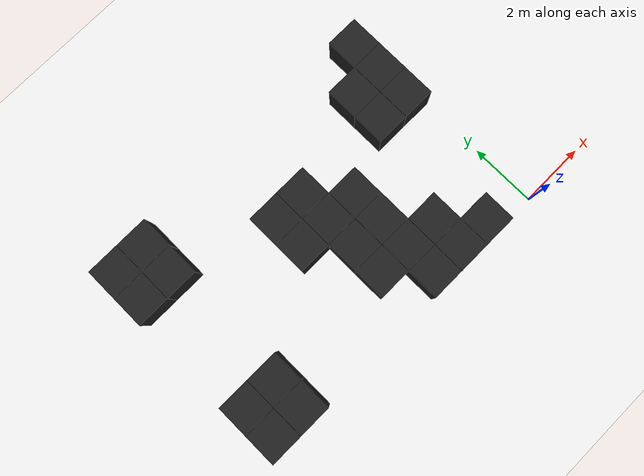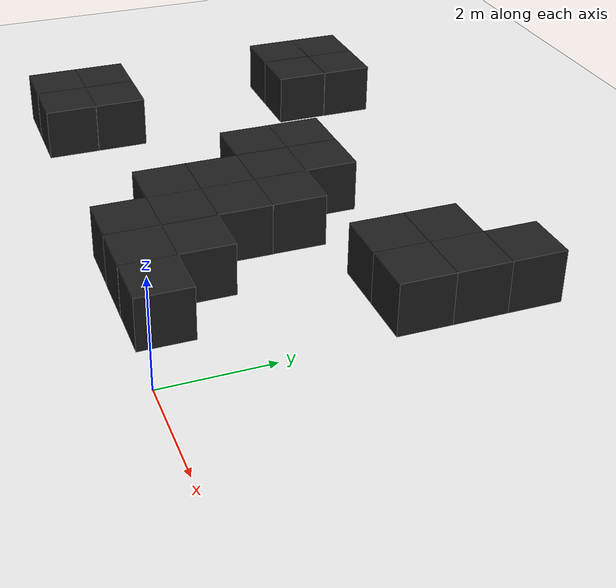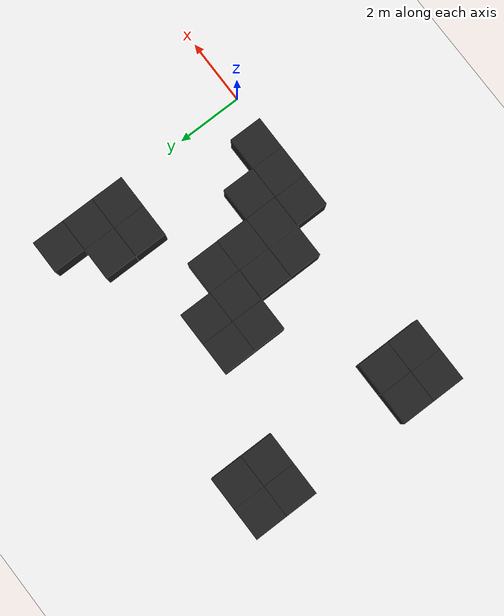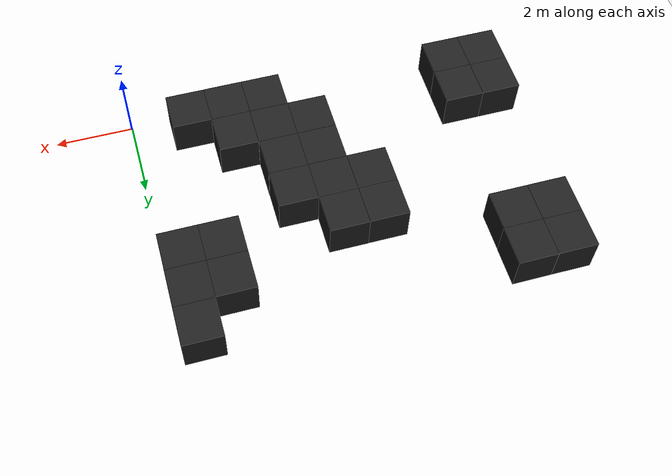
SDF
<sdf version="1.6">
 <world name="default">
  <light name="sun" type="directional">
   <pose>0 0 10 0 -0 0</pose>
   <diffuse>0.8 0.8 0.8 1</diffuse>
   <specular>0.1 0.1 0.1 1</specular>
   <attenuation>
    <range>1000</range>
    <constant>0.9</constant>
    <linear>0.01</linear>
    <quadratic>0.001</quadratic>
   </attenuation>
   <direction>-0.5 0.5 -1</direction>
  </light>
  <model name="ground_plane">
   <static>1</static>
   <link name="link">
    <collision name="collision">
     <geometry><plane><normal>0 0 1</normal><size>100 100</size></plane></geometry>
     <surface><friction><ode><mu>100</mu><mu2>50</mu2></ode></friction></surface>
    </collision>
    <visual name="visual">
     <cast_shadows>0</cast_shadows>
     <geometry><plane><normal>0 0 1</normal><size>100 100</size></plane></geometry>
     <material>
      <script><uri>file://media/materials/scripts/gazebo.material</uri><name>Gazebo/White</name></script>
     </material>
    </visual>
   </link>
  </model>
  <gravity>0 0 -9.8</gravity>
  <magnetic_field>6e-06 2.3e-05 -4.2e-05</magnetic_field>
  <atmosphere type="adiabatic"/>
  <physics name="default_physics" default="0" type="ode">
   <max_step_size>0.001</max_step_size>
   <real_time_factor>1</real_time_factor>
   <real_time_update_rate>1000</real_time_update_rate>
  </physics>
  <scene><ambient>0.4 0.4 0.4 1</ambient><background>0.7 0.7 0.7 1</background><shadows>1</shadows></scene>
  <spherical_coordinates>
   <surface_model>EARTH_WGS84</surface_model>
   <latitude_deg>0</latitude_deg>
   <longitude_deg>0</longitude_deg>
   <elevation>0</elevation>
   <heading_deg>0</heading_deg>
  </spherical_coordinates>
  <model name="unit_box_0">
   <pose>-1.4997 0.495263 0.499995 1e-05 0 -0.002146</pose>
   <link name="link">
    <inertial>
     <mass>1</mass>
     <inertia>
      <ixx>0.166667</ixx>
      <ixy>0</ixy>
      <ixz>0</ixz>
      <iyy>0.166667</iyy>
      <iyz>0</iyz>
      <izz>0.166667</izz>
     </inertia>
    </inertial>
    <collision name="collision"><geometry><box><size>1 1 1</size></box></geometry></collision>
    <visual name="visual">
     <geometry><box><size>1 1 1</size></box></geometry>
     <material>
      <script><name>Gazebo/Black</name><uri>file://media/materials/scripts/gazebo.material</uri></script>
     </material>
    </visual>
   </link>
  </model>
  <model name="unit_box_1">
   <pose>-2.50268 0.49382 0.499995 -1e-05 -0 0.001617</pose>
   <link name="link">
    <inertial>
     <mass>1</mass>
     <inertia>
      <ixx>0.166667</ixx>
      <ixy>0</ixy>
      <ixz>0</ixz>
      <iyy>0.166667</iyy>
      <iyz>0</iyz>
      <izz>0.166667</izz>
     </inertia>
    </inertial>
    <collision name="collision"><geometry><box><size>1 1 1</size></box></geometry></collision>
    <visual name="visual">
     <geometry><box><size>1 1 1</size></box></geometry>
     <material>
      <script><name>Gazebo/Black</name><uri>file://media/materials/scripts/gazebo.material</uri></script>
     </material>
    </visual>
   </link>
  </model>
  <model name="unit_box_2">
   <pose>-2.49505 1.49601 0.499995 -1e-05 -0 0.000817</pose>
   <link name="link">
    <inertial>
     <mass>1</mass>
     <inertia>
      <ixx>0.166667</ixx>
      <ixy>0</ixy>
      <ixz>0</ixz>
      <iyy>0.166667</iyy>
      <iyz>0</iyz>
      <izz>0.166667</izz>
     </inertia>
    </inertial>
    <collision name="collision"><geometry><box><size>1 1 1</size></box></geometry></collision>
    <visual name="visual">
     <geometry><box><size>1 1 1</size></box></geometry>
     <material>
      <script><name>Gazebo/Black</name><uri>file://media/materials/scripts/gazebo.material</uri></script>
     </material>
    </visual>
   </link>
  </model>
  <model name="unit_box_3">
   <pose>-3.50438 0.495556 0.499995 0 1e-05 0.001607</pose>
   <link name="link">
    <inertial>
     <mass>1</mass>
     <inertia>
      <ixx>0.166667</ixx>
      <ixy>0</ixy>
      <ixz>0</ixz>
      <iyy>0.166667</iyy>
      <iyz>0</iyz>
      <izz>0.166667</izz>
     </inertia>
    </inertial>
    <collision name="collision"><geometry><box><size>1 1 1</size></box></geometry></collision>
    <visual name="visual">
     <geometry><box><size>1 1 1</size></box></geometry>
     <material>
      <script><name>Gazebo/Black</name><uri>file://media/materials/scripts/gazebo.material</uri></script>
     </material>
    </visual>
   </link>
  </model>
  <model name="unit_box_4">
   <pose>-3.49506 1.49665 0.499995 1e-05 -0 0.000811</pose>
   <link name="link">
    <inertial>
     <mass>1</mass>
     <inertia>
      <ixx>0.166667</ixx>
      <ixy>0</ixy>
      <ixz>0</ixz>
      <iyy>0.166667</iyy>
      <iyz>0</iyz>
      <izz>0.166667</izz>
     </inertia>
    </inertial>
    <collision name="collision"><geometry><box><size>1 1 1</size></box></geometry></collision>
    <visual name="visual">
     <geometry><box><size>1 1 1</size></box></geometry>
     <material>
      <script><name>Gazebo/Black</name><uri>file://media/materials/scripts/gazebo.material</uri></script>
     </material>
    </visual>
   </link>
  </model>
  <model name="unit_box_5">
   <pose>-3.49745 2.49862 0.499995 0 1e-05 0</pose>
   <link name="link">
    <inertial>
     <mass>1</mass>
     <inertia>
      <ixx>0.166667</ixx>
      <ixy>0</ixy>
      <ixz>0</ixz>
      <iyy>0.166667</iyy>
      <iyz>0</iyz>
      <izz>0.166667</izz>
     </inertia>
    </inertial>
    <collision name="collision"><geometry><box><size>1 1 1</size></box></geometry></collision>
    <visual name="visual">
     <geometry><box><size>1 1 1</size></box></geometry>
     <material>
      <script><name>Gazebo/Black</name><uri>file://media/materials/scripts/gazebo.material</uri></script>
     </material>
    </visual>
   </link>
  </model>
  <model name="unit_box_6">
   <pose>-4.5012 1.49484 0.499995 0 -1e-05 0.00067</pose>
   <link name="link">
    <inertial>
     <mass>1</mass>
     <inertia>
      <ixx>0.166667</ixx>
      <ixy>0</ixy>
      <ixz>0</ixz>
      <iyy>0.166667</iyy>
      <iyz>0</iyz>
      <izz>0.166667</izz>
     </inertia>
    </inertial>
    <collision name="collision"><geometry><box><size>1 1 1</size></box></geometry></collision>
    <visual name="visual">
     <geometry><box><size>1 1 1</size></box></geometry>
     <material>
      <script><name>Gazebo/Black</name><uri>file://media/materials/scripts/gazebo.material</uri></script>
     </material>
    </visual>
   </link>
  </model>
  <model name="unit_box_7">
   <pose>-4.50131 2.4951 0.499995 0 1e-05 0.000185</pose>
   <link name="link">
    <inertial>
     <mass>1</mass>
     <inertia>
      <ixx>0.166667</ixx>
      <ixy>0</ixy>
      <ixz>0</ixz>
      <iyy>0.166667</iyy>
      <iyz>0</iyz>
      <izz>0.166667</izz>
     </inertia>
    </inertial>
    <collision name="collision"><geometry><box><size>1 1 1</size></box></geometry></collision>
    <visual name="visual">
     <geometry><box><size>1 1 1</size></box></geometry>
     <material>
      <script><name>Gazebo/Black</name><uri>file://media/materials/scripts/gazebo.material</uri></script>
     </material>
    </visual>
   </link>
  </model>
  <model name="unit_box_8">
   <pose>-3.50092 3.50164 0.499995 0 1e-05 -0.00179</pose>
   <link name="link">
    <inertial>
     <mass>1</mass>
     <inertia>
      <ixx>0.166667</ixx>
      <ixy>0</ixy>
      <ixz>0</ixz>
      <iyy>0.166667</iyy>
      <iyz>0</iyz>
      <izz>0.166667</izz>
     </inertia>
    </inertial>
    <collision name="collision"><geometry><box><size>1 1 1</size></box></geometry></collision>
    <visual name="visual">
     <geometry><box><size>1 1 1</size></box></geometry>
     <material>
      <script><name>Gazebo/Black</name><uri>file://media/materials/scripts/gazebo.material</uri></script>
     </material>
    </visual>
   </link>
  </model>
  <model name="unit_box_9">
   <pose>-4.50319 3.49573 0.499995 -1e-05 0 -0.000115</pose>
   <link name="link">
    <inertial>
     <mass>1</mass>
     <inertia>
      <ixx>0.166667</ixx>
      <ixy>0</ixy>
      <ixz>0</ixz>
      <iyy>0.166667</iyy>
      <iyz>0</iyz>
      <izz>0.166667</izz>
     </inertia>
    </inertial>
    <collision name="collision"><geometry><box><size>1 1 1</size></box></geometry></collision>
    <visual name="visual">
     <geometry><box><size>1 1 1</size></box></geometry>
     <material>
      <script><name>Gazebo/Black</name><uri>file://media/materials/scripts/gazebo.material</uri></script>
     </material>
    </visual>
   </link>
  </model>
  <model name="unit_box_10">
   <pose>-4.50468 4.50002 0.499995 0 1e-05 -0.0001</pose>
   <link name="link">
    <inertial>
     <mass>1</mass>
     <inertia>
      <ixx>0.166667</ixx>
      <ixy>0</ixy>
      <ixz>0</ixz>
      <iyy>0.166667</iyy>
      <iyz>0</iyz>
      <izz>0.166667</izz>
     </inertia>
    </inertial>
    <collision name="collision"><geometry><box><size>1 1 1</size></box></geometry></collision>
    <visual name="visual">
     <geometry><box><size>1 1 1</size></box></geometry>
     <material>
      <script><name>Gazebo/Black</name><uri>file://media/materials/scripts/gazebo.material</uri></script>
     </material>
    </visual>
   </link>
  </model>
  <model name="unit_box_11">
   <pose>-5.5047 4.49718 0.499995 0 -1e-05 -0.000101</pose>
   <link name="link">
    <inertial>
     <mass>1</mass>
     <inertia>
      <ixx>0.166667</ixx>
      <ixy>0</ixy>
      <ixz>0</ixz>
      <iyy>0.166667</iyy>
      <iyz>0</iyz>
      <izz>0.166667</izz>
     </inertia>
    </inertial>
    <collision name="collision"><geometry><box><size>1 1 1</size></box></geometry></collision>
    <visual name="visual">
     <geometry><box><size>1 1 1</size></box></geometry>
     <material>
      <script><name>Gazebo/Black</name><uri>file://media/materials/scripts/gazebo.material</uri></script>
     </material>
    </visual>
   </link>
  </model>
  <model name="unit_box_12">
   <pose>-5.50321 3.49331 0.5 0 0 -0.000114</pose>
   <link name="link">
    <inertial>
     <mass>1</mass>
     <inertia>
      <ixx>0.166667</ixx>
      <ixy>0</ixy>
      <ixz>0</ixz>
      <iyy>0.166667</iyy>
      <iyz>0</iyz>
      <izz>0.166667</izz>
     </inertia>
    </inertial>
    <collision name="collision"><geometry><box><size>1 1 1</size></box></geometry></collision>
    <visual name="visual">
     <geometry><box><size>1 1 1</size></box></geometry>
     <material>
      <script><name>Gazebo/Black</name><uri>file://media/materials/scripts/gazebo.material</uri></script>
     </material>
    </visual>
   </link>
  </model>
  <model name="unit_box_13">
   <pose>-0.500792 4.49888 0.499995 -0 -1e-05 0.000628</pose>
   <link name="link">
    <inertial>
     <mass>1</mass>
     <inertia>
      <ixx>0.166667</ixx>
      <ixy>0</ixy>
      <ixz>0</ixz>
      <iyy>0.166667</iyy>
      <iyz>0</iyz>
      <izz>0.166667</izz>
     </inertia>
    </inertial>
    <collision name="collision"><geometry><box><size>1 1 1</size></box></geometry></collision>
    <visual name="visual">
     <geometry><box><size>1 1 1</size></box></geometry>
     <material>
      <script><name>Gazebo/Black</name><uri>file://media/materials/scripts/gazebo.material</uri></script>
     </material>
    </visual>
   </link>
  </model>
  <model name="unit_box_14">
   <pose>-0.500117 5.4989 0.499995 -1e-05 -0 0.000622</pose>
   <link name="link">
    <inertial>
     <mass>1</mass>
     <inertia>
      <ixx>0.166667</ixx>
      <ixy>0</ixy>
      <ixz>0</ixz>
      <iyy>0.166667</iyy>
      <iyz>0</iyz>
      <izz>0.166667</izz>
     </inertia>
    </inertial>
    <collision name="collision"><geometry><box><size>1 1 1</size></box></geometry></collision>
    <visual name="visual">
     <geometry><box><size>1 1 1</size></box></geometry>
     <material>
      <script><name>Gazebo/Black</name><uri>file://media/materials/scripts/gazebo.material</uri></script>
     </material>
    </visual>
   </link>
  </model>
  <model name="unit_box_15">
   <pose>-0.500064 6.4989 0.499995 1e-05 0 0.000622</pose>
   <link name="link">
    <inertial>
     <mass>1</mass>
     <inertia>
      <ixx>0.166667</ixx>
      <ixy>0</ixy>
      <ixz>0</ixz>
      <iyy>0.166667</iyy>
      <iyz>0</iyz>
      <izz>0.166667</izz>
     </inertia>
    </inertial>
    <collision name="collision"><geometry><box><size>1 1 1</size></box></geometry></collision>
    <visual name="visual">
     <geometry><box><size>1 1 1</size></box></geometry>
     <material>
      <script><name>Gazebo/Black</name><uri>file://media/materials/scripts/gazebo.material</uri></script>
     </material>
    </visual>
   </link>
  </model>
  <model name="unit_box_16">
   <pose>-1.50236 4.49885 0.499995 0 -1e-05 0.000822</pose>
   <link name="link">
    <inertial>
     <mass>1</mass>
     <inertia>
      <ixx>0.166667</ixx>
      <ixy>0</ixy>
      <ixz>0</ixz>
      <iyy>0.166667</iyy>
      <iyz>0</iyz>
      <izz>0.166667</izz>
     </inertia>
    </inertial>
    <collision name="collision"><geometry><box><size>1 1 1</size></box></geometry></collision>
    <visual name="visual">
     <geometry><box><size>1 1 1</size></box></geometry>
     <material>
      <script><name>Gazebo/Black</name><uri>file://media/materials/scripts/gazebo.material</uri></script>
     </material>
    </visual>
   </link>
  </model>
  <model name="unit_box_17">
   <pose>-1.50247 5.49886 0.499995 1e-05 0 0.000828</pose>
   <link name="link">
    <inertial>
     <mass>1</mass>
     <inertia>
      <ixx>0.166667</ixx>
      <ixy>0</ixy>
      <ixz>0</ixz>
      <iyy>0.166667</iyy>
      <iyz>0</iyz>
      <izz>0.166667</izz>
     </inertia>
    </inertial>
    <collision name="collision"><geometry><box><size>1 1 1</size></box></geometry></collision>
    <visual name="visual">
     <geometry><box><size>1 1 1</size></box></geometry>
     <material>
      <script><name>Gazebo/Black</name><uri>file://media/materials/scripts/gazebo.material</uri></script>
     </material>
    </visual>
   </link>
  </model>
  <model name="unit_box_18">
   <pose>-9.49484 0.500324 0.499995 -1e-05 0 0</pose>
   <link name="link">
    <inertial>
     <mass>1</mass>
     <inertia>
      <ixx>0.166667</ixx>
      <ixy>0</ixy>
      <ixz>0</ixz>
      <iyy>0.166667</iyy>
      <iyz>0</iyz>
      <izz>0.166667</izz>
     </inertia>
    </inertial>
    <collision name="collision"><geometry><box><size>1 1 1</size></box></geometry></collision>
    <visual name="visual">
     <geometry><box><size>1 1 1</size></box></geometry>
     <material>
      <script><name>Gazebo/Black</name><uri>file://media/materials/scripts/gazebo.material</uri></script>
     </material>
    </visual>
   </link>
  </model>
  <model name="unit_box_19">
   <pose>-8.49274 0.501218 0.499995 0 1e-05 0</pose>
   <link name="link">
    <inertial>
     <mass>1</mass>
     <inertia>
      <ixx>0.166667</ixx>
      <ixy>0</ixy>
      <ixz>0</ixz>
      <iyy>0.166667</iyy>
      <iyz>0</iyz>
      <izz>0.166667</izz>
     </inertia>
    </inertial>
    <collision name="collision"><geometry><box><size>1 1 1</size></box></geometry></collision>
    <visual name="visual">
     <geometry><box><size>1 1 1</size></box></geometry>
     <material>
      <script><name>Gazebo/Black</name><uri>file://media/materials/scripts/gazebo.material</uri></script>
     </material>
    </visual>
   </link>
  </model>
  <model name="unit_box_20">
   <pose>-9.49366 1.50366 0.499995 0 1e-05 0</pose>
   <link name="link">
    <inertial>
     <mass>1</mass>
     <inertia>
      <ixx>0.166667</ixx>
      <ixy>0</ixy>
      <ixz>0</ixz>
      <iyy>0.166667</iyy>
      <iyz>0</iyz>
      <izz>0.166667</izz>
     </inertia>
    </inertial>
    <collision name="collision"><geometry><box><size>1 1 1</size></box></geometry></collision>
    <visual name="visual">
     <geometry><box><size>1 1 1</size></box></geometry>
     <material>
      <script><name>Gazebo/Black</name><uri>file://media/materials/scripts/gazebo.material</uri></script>
     </material>
    </visual>
   </link>
  </model>
  <model name="unit_box_21">
   <pose>-8.49343 1.50428 0.499995 -0 1e-05 1e-06</pose>
   <link name="link">
    <inertial>
     <mass>1</mass>
     <inertia>
      <ixx>0.166667</ixx>
      <ixy>0</ixy>
      <ixz>0</ixz>
      <iyy>0.166667</iyy>
      <iyz>0</iyz>
      <izz>0.166667</izz>
     </inertia>
    </inertial>
    <collision name="collision"><geometry><box><size>1 1 1</size></box></geometry></collision>
    <visual name="visual">
     <geometry><box><size>1 1 1</size></box></geometry>
     <material>
      <script><name>Gazebo/Black</name><uri>file://media/materials/scripts/gazebo.material</uri></script>
     </material>
    </visual>
   </link>
  </model>
  <model name="unit_box_22">
   <pose>-9.50513 5.49685 0.5 0 0 -9.6e-05</pose>
   <link name="link">
    <inertial>
     <mass>1</mass>
     <inertia>
      <ixx>0.166667</ixx>
      <ixy>0</ixy>
      <ixz>0</ixz>
      <iyy>0.166667</iyy>
      <iyz>0</iyz>
      <izz>0.166667</izz>
     </inertia>
    </inertial>
    <collision name="collision"><geometry><box><size>1 1 1</size></box></geometry></collision>
    <visual name="visual">
     <geometry><box><size>1 1 1</size></box></geometry>
     <material>
      <script><name>Gazebo/Black</name><uri>file://media/materials/scripts/gazebo.material</uri></script>
     </material>
    </visual>
   </link>
  </model>
  <model name="unit_box_23">
   <pose>-8.50512 5.49765 0.5 0 0 -9.6e-05</pose>
   <link name="link">
    <inertial>
     <mass>1</mass>
     <inertia>
      <ixx>0.166667</ixx>
      <ixy>0</ixy>
      <ixz>0</ixz>
      <iyy>0.166667</iyy>
      <iyz>0</iyz>
      <izz>0.166667</izz>
     </inertia>
    </inertial>
    <collision name="collision"><geometry><box><size>1 1 1</size></box></geometry></collision>
    <visual name="visual">
     <geometry><box><size>1 1 1</size></box></geometry>
     <material>
      <script><name>Gazebo/Black</name><uri>file://media/materials/scripts/gazebo.material</uri></script>
     </material>
    </visual>
   </link>
  </model>
  <model name="unit_box_24">
   <pose>-9.50447 6.49962 0.499995 -0 1e-05 -8.1e-05</pose>
   <link name="link">
    <inertial>
     <mass>1</mass>
     <inertia>
      <ixx>0.166667</ixx>
      <ixy>0</ixy>
      <ixz>0</ixz>
      <iyy>0.166667</iyy>
      <iyz>0</iyz>
      <izz>0.166667</izz>
     </inertia>
    </inertial>
    <collision name="collision"><geometry><box><size>1 1 1</size></box></geometry></collision>
    <visual name="visual">
     <geometry><box><size>1 1 1</size></box></geometry>
     <material>
      <script><name>Gazebo/Black</name><uri>file://media/materials/scripts/gazebo.material</uri></script>
     </material>
    </visual>
   </link>
  </model>
  <model name="unit_box_25">
   <pose>-8.50073 6.49962 0.499995 1e-05 -0 -4.9e-05</pose>
   <link name="link">
    <inertial>
     <mass>1</mass>
     <inertia>
      <ixx>0.166667</ixx>
      <ixy>0</ixy>
      <ixz>0</ixz>
      <iyy>0.166667</iyy>
      <iyz>0</iyz>
      <izz>0.166667</izz>
     </inertia>
    </inertial>
    <collision name="collision"><geometry><box><size>1 1 1</size></box></geometry></collision>
    <visual name="visual">
     <geometry><box><size>1 1 1</size></box></geometry>
     <material>
      <script><name>Gazebo/Black</name><uri>file://media/materials/scripts/gazebo.material</uri></script>
     </material>
    </visual>
   </link>
  </model>
 </world>
</sdf>
